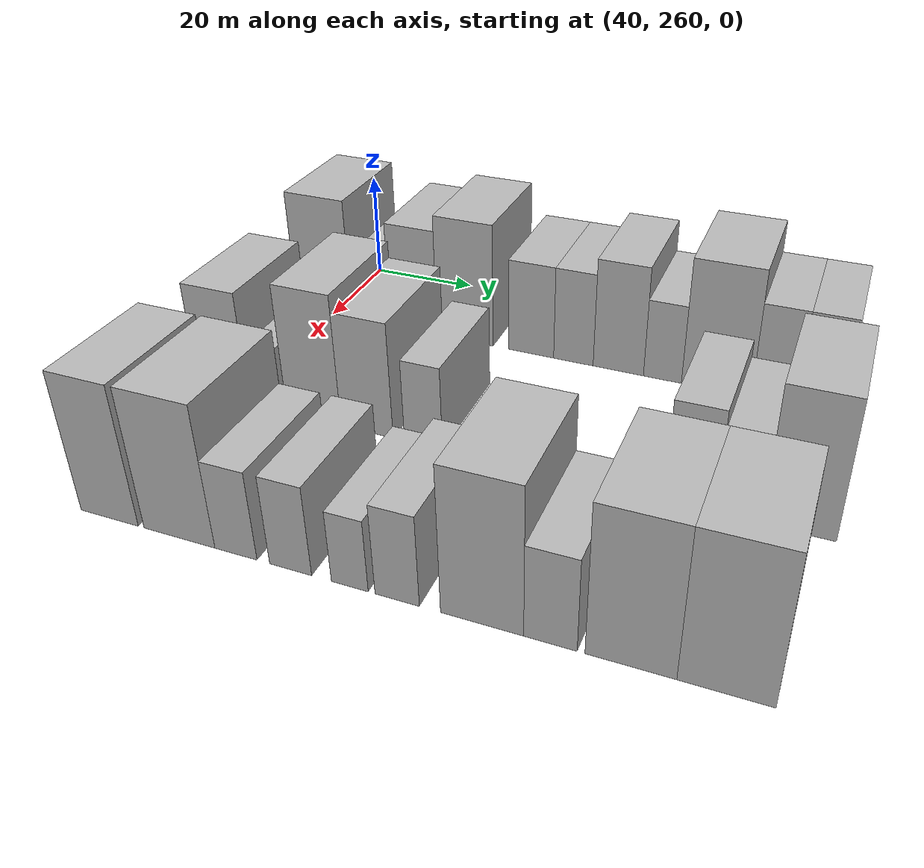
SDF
<sdf version="1.6">
 <world name="default">
  <model name="building_67">
   <static>1</static>
   <pose>50.0000 258.0825 0 0.000000 0.000000 0.000000</pose>
   <link name="link">
    <pose>0 0 12.00 0 0 0</pose>
    <collision name="collision"><geometry><box><size>20.0000 11.8950 24.0000</size></box></geometry></collision>
    <visual name="visual">
     <cast_shadows>0</cast_shadows>
     <geometry><box><size>20.0000 11.8950 24.0000</size></box></geometry>
     <material>
      <script>
       <uri>model://HANNAS_wall/materials/scripts</uri>
       <uri>model://HANNAS_wall/materials/textures</uri>
       <name>vrc/HANNAS_wall</name>
      </script>
     </material>
    </visual>
   </link>
  </model>
  <model name="building_68">
   <static>1</static>
   <pose>50.0000 269.0869 0 0.000000 0.000000 0.000000</pose>
   <link name="link">
    <pose>0 0 7.50 0 0 0</pose>
    <collision name="collision"><geometry><box><size>20.0000 6.1139 15.0000</size></box></geometry></collision>
    <visual name="visual">
     <cast_shadows>0</cast_shadows>
     <geometry><box><size>20.0000 6.1139 15.0000</size></box></geometry>
     <material>
      <script>
       <uri>model://HANNAS_wall/materials/scripts</uri>
       <uri>model://HANNAS_wall/materials/textures</uri>
       <name>vrc/HANNAS_wall</name>
      </script>
     </material>
    </visual>
   </link>
  </model>
  <model name="building_69">
   <static>1</static>
   <pose>50.0000 276.9377 0 0.000000 0.000000 0.000000</pose>
   <link name="link">
    <pose>0 0 10.50 0 0 0</pose>
    <collision name="collision"><geometry><box><size>20.0000 9.5877 21.0000</size></box></geometry></collision>
    <visual name="visual">
     <cast_shadows>0</cast_shadows>
     <geometry><box><size>20.0000 9.5877 21.0000</size></box></geometry>
     <material>
      <script>
       <uri>model://HANNAS_wall/materials/scripts</uri>
       <uri>model://HANNAS_wall/materials/textures</uri>
       <name>vrc/HANNAS_wall</name>
      </script>
     </material>
    </visual>
   </link>
  </model>
  <model name="building_70">
   <static>1</static>
   <pose>50.0000 287.3163 0 0.000000 0.000000 0.000000</pose>
   <link name="link">
    <pose>0 0 12.00 0 0 0</pose>
    <collision name="collision"><geometry><box><size>20.0000 11.1694 24.0000</size></box></geometry></collision>
    <visual name="visual">
     <cast_shadows>0</cast_shadows>
     <geometry><box><size>20.0000 11.1694 24.0000</size></box></geometry>
     <material>
      <script>
       <uri>model://HANNAS_wall/materials/scripts</uri>
       <uri>model://HANNAS_wall/materials/textures</uri>
       <name>vrc/HANNAS_wall</name>
      </script>
     </material>
    </visual>
   </link>
  </model>
  <model name="building_71">
   <static>1</static>
   <pose>50.0000 300.2091 0 0.000000 0.000000 0.000000</pose>
   <link name="link">
    <pose>0 0 9.00 0 0 0</pose>
    <collision name="collision"><geometry><box><size>20.0000 8.6162 18.0000</size></box></geometry></collision>
    <visual name="visual">
     <cast_shadows>0</cast_shadows>
     <geometry><box><size>20.0000 8.6162 18.0000</size></box></geometry>
     <material>
      <script>
       <uri>model://HANNAS_wall/materials/scripts</uri>
       <uri>model://HANNAS_wall/materials/textures</uri>
       <name>vrc/HANNAS_wall</name>
      </script>
     </material>
    </visual>
   </link>
  </model>
  <model name="building_72">
   <static>1</static>
   <pose>50.0000 308.1991 0 0.000000 0.000000 0.000000</pose>
   <link name="link">
    <pose>0 0 9.00 0 0 0</pose>
    <collision name="collision"><geometry><box><size>20.0000 7.3640 18.0000</size></box></geometry></collision>
    <visual name="visual">
     <cast_shadows>0</cast_shadows>
     <geometry><box><size>20.0000 7.3640 18.0000</size></box></geometry>
     <material>
      <script>
       <uri>model://HANNAS_wall/materials/scripts</uri>
       <uri>model://HANNAS_wall/materials/textures</uri>
       <name>vrc/HANNAS_wall</name>
      </script>
     </material>
    </visual>
   </link>
  </model>
  <model name="building_73">
   <static>1</static>
   <pose>50.0000 316.4513 0 0.000000 0.000000 0.000000</pose>
   <link name="link">
    <pose>0 0 10.50 0 0 0</pose>
    <collision name="collision"><geometry><box><size>20.0000 9.1403 21.0000</size></box></geometry></collision>
    <visual name="visual">
     <cast_shadows>0</cast_shadows>
     <geometry><box><size>20.0000 9.1403 21.0000</size></box></geometry>
     <material>
      <script>
       <uri>model://HANNAS_wall/materials/scripts</uri>
       <uri>model://HANNAS_wall/materials/textures</uri>
       <name>vrc/HANNAS_wall</name>
      </script>
     </material>
    </visual>
   </link>
  </model>
  <model name="building_74">
   <static>1</static>
   <pose>50.0000 324.3762 0 0.000000 0.000000 0.000000</pose>
   <link name="link">
    <pose>0 0 7.50 0 0 0</pose>
    <collision name="collision"><geometry><box><size>20.0000 6.7095 15.0000</size></box></geometry></collision>
    <visual name="visual">
     <cast_shadows>0</cast_shadows>
     <geometry><box><size>20.0000 6.7095 15.0000</size></box></geometry>
     <material>
      <script>
       <uri>model://HANNAS_wall/materials/scripts</uri>
       <uri>model://HANNAS_wall/materials/textures</uri>
       <name>vrc/HANNAS_wall</name>
      </script>
     </material>
    </visual>
   </link>
  </model>
  <model name="building_75">
   <static>1</static>
   <pose>50.0000 333.7004 0 0.000000 0.000000 0.000000</pose>
   <link name="link">
    <pose>0 0 12.00 0 0 0</pose>
    <collision name="collision"><geometry><box><size>20.0000 11.9389 24.0000</size></box></geometry></collision>
    <visual name="visual">
     <cast_shadows>0</cast_shadows>
     <geometry><box><size>20.0000 11.9389 24.0000</size></box></geometry>
     <material>
      <script>
       <uri>model://HANNAS_wall/materials/scripts</uri>
       <uri>model://HANNAS_wall/materials/textures</uri>
       <name>vrc/HANNAS_wall</name>
      </script>
     </material>
    </visual>
   </link>
  </model>
  <model name="building_76">
   <static>1</static>
   <pose>50.0000 343.4634 0 0.000000 0.000000 0.000000</pose>
   <link name="link">
    <pose>0 0 9.00 0 0 0</pose>
    <collision name="collision"><geometry><box><size>20.0000 7.5872 18.0000</size></box></geometry></collision>
    <visual name="visual">
     <cast_shadows>0</cast_shadows>
     <geometry><box><size>20.0000 7.5872 18.0000</size></box></geometry>
     <material>
      <script>
       <uri>model://HANNAS_wall/materials/scripts</uri>
       <uri>model://HANNAS_wall/materials/textures</uri>
       <name>vrc/HANNAS_wall</name>
      </script>
     </material>
    </visual>
   </link>
  </model>
  <model name="building_77">
   <static>1</static>
   <pose>50.0000 351.0186 0 0.000000 0.000000 0.000000</pose>
   <link name="link">
    <pose>0 0 9.00 0 0 0</pose>
    <collision name="collision"><geometry><box><size>20.0000 7.5232 18.0000</size></box></geometry></collision>
    <visual name="visual">
     <cast_shadows>0</cast_shadows>
     <geometry><box><size>20.0000 7.5232 18.0000</size></box></geometry>
     <material>
      <script>
       <uri>model://HANNAS_wall/materials/scripts</uri>
       <uri>model://HANNAS_wall/materials/textures</uri>
       <name>vrc/HANNAS_wall</name>
      </script>
     </material>
    </visual>
   </link>
  </model>
  <model name="building_141">
   <static>1</static>
   <pose>82.0000 256.9384 0 0.000000 0.000000 0.000000</pose>
   <link name="link">
    <pose>0 0 10.50 0 0 0</pose>
    <collision name="collision"><geometry><box><size>20.0000 9.8046 21.0000</size></box></geometry></collision>
    <visual name="visual">
     <cast_shadows>0</cast_shadows>
     <geometry><box><size>20.0000 9.8046 21.0000</size></box></geometry>
     <material>
      <script>
       <uri>model://HANNAS_wall/materials/scripts</uri>
       <uri>model://HANNAS_wall/materials/textures</uri>
       <name>vrc/HANNAS_wall</name>
      </script>
     </material>
    </visual>
   </link>
  </model>
  <model name="building_142">
   <static>1</static>
   <pose>82.0000 265.4273 0 0.000000 0.000000 0.000000</pose>
   <link name="link">
    <pose>0 0 6.00 0 0 0</pose>
    <collision name="collision"><geometry><box><size>20.0000 5.1731 12.0000</size></box></geometry></collision>
    <visual name="visual">
     <cast_shadows>0</cast_shadows>
     <geometry><box><size>20.0000 5.1731 12.0000</size></box></geometry>
     <material>
      <script>
       <uri>model://HANNAS_wall/materials/scripts</uri>
       <uri>model://HANNAS_wall/materials/textures</uri>
       <name>vrc/HANNAS_wall</name>
      </script>
     </material>
    </visual>
   </link>
  </model>
  <model name="building_143">
   <static>1</static>
   <pose>82.0000 274.0516 0 0.000000 0.000000 0.000000</pose>
   <link name="link">
    <pose>0 0 12.00 0 0 0</pose>
    <collision name="collision"><geometry><box><size>20.0000 10.0757 24.0000</size></box></geometry></collision>
    <visual name="visual">
     <cast_shadows>0</cast_shadows>
     <geometry><box><size>20.0000 10.0757 24.0000</size></box></geometry>
     <material>
      <script>
       <uri>model://HANNAS_wall/materials/scripts</uri>
       <uri>model://HANNAS_wall/materials/textures</uri>
       <name>vrc/HANNAS_wall</name>
      </script>
     </material>
    </visual>
   </link>
  </model>
  <model name="building_144">
   <static>1</static>
   <pose>82.0000 283.7586 0 0.000000 0.000000 0.000000</pose>
   <link name="link">
    <pose>0 0 10.50 0 0 0</pose>
    <collision name="collision"><geometry><box><size>20.0000 9.3383 21.0000</size></box></geometry></collision>
    <visual name="visual">
     <cast_shadows>0</cast_shadows>
     <geometry><box><size>20.0000 9.3383 21.0000</size></box></geometry>
     <material>
      <script>
       <uri>model://HANNAS_wall/materials/scripts</uri>
       <uri>model://HANNAS_wall/materials/textures</uri>
       <name>vrc/HANNAS_wall</name>
      </script>
     </material>
    </visual>
   </link>
  </model>
  <model name="building_145">
   <static>1</static>
   <pose>82.0000 293.7158 0 0.000000 0.000000 0.000000</pose>
   <link name="link">
    <pose>0 0 7.50 0 0 0</pose>
    <collision name="collision"><geometry><box><size>20.0000 6.5761 15.0000</size></box></geometry></collision>
    <visual name="visual">
     <cast_shadows>0</cast_shadows>
     <geometry><box><size>20.0000 6.5761 15.0000</size></box></geometry>
     <material>
      <script>
       <uri>model://HANNAS_wall/materials/scripts</uri>
       <uri>model://HANNAS_wall/materials/textures</uri>
       <name>vrc/HANNAS_wall</name>
      </script>
     </material>
    </visual>
   </link>
  </model>
  <model name="building_146">
   <static>1</static>
   <pose>82.0000 336.3327 0 0.000000 0.000000 0.000000</pose>
   <link name="link">
    <pose>0 0 9.00 0 0 0</pose>
    <collision name="collision"><geometry><box><size>20.0000 7.5526 18.0000</size></box></geometry></collision>
    <visual name="visual">
     <cast_shadows>0</cast_shadows>
     <geometry><box><size>20.0000 7.5526 18.0000</size></box></geometry>
     <material>
      <script>
       <uri>model://HANNAS_wall/materials/scripts</uri>
       <uri>model://HANNAS_wall/materials/textures</uri>
       <name>vrc/HANNAS_wall</name>
      </script>
     </material>
    </visual>
   </link>
  </model>
  <model name="building_147">
   <static>1</static>
   <pose>82.0000 343.4468 0 0.000000 0.000000 0.000000</pose>
   <link name="link">
    <pose>0 0 7.50 0 0 0</pose>
    <collision name="collision"><geometry><box><size>20.0000 6.6756 15.0000</size></box></geometry></collision>
    <visual name="visual">
     <cast_shadows>0</cast_shadows>
     <geometry><box><size>20.0000 6.6756 15.0000</size></box></geometry>
     <material>
      <script>
       <uri>model://HANNAS_wall/materials/scripts</uri>
       <uri>model://HANNAS_wall/materials/textures</uri>
       <name>vrc/HANNAS_wall</name>
      </script>
     </material>
    </visual>
   </link>
  </model>
  <model name="building_148">
   <static>1</static>
   <pose>82.0000 351.9427 0 0.000000 0.000000 0.000000</pose>
   <link name="link">
    <pose>0 0 12.00 0 0 0</pose>
    <collision name="collision"><geometry><box><size>20.0000 10.3162 24.0000</size></box></geometry></collision>
    <visual name="visual">
     <cast_shadows>0</cast_shadows>
     <geometry><box><size>20.0000 10.3162 24.0000</size></box></geometry>
     <material>
      <script>
       <uri>model://HANNAS_wall/materials/scripts</uri>
       <uri>model://HANNAS_wall/materials/textures</uri>
       <name>vrc/HANNAS_wall</name>
      </script>
     </material>
    </visual>
   </link>
  </model>
  <model name="building_216">
   <static>1</static>
   <pose>114.0000 258.9433 0 0.000000 0.000000 0.000000</pose>
   <link name="link">
    <pose>0 0 12.00 0 0 0</pose>
    <collision name="collision"><geometry><box><size>20.0000 9.9906 24.0000</size></box></geometry></collision>
    <visual name="visual">
     <cast_shadows>0</cast_shadows>
     <geometry><box><size>20.0000 9.9906 24.0000</size></box></geometry>
     <material>
      <script>
       <uri>model://HANNAS_wall/materials/scripts</uri>
       <uri>model://HANNAS_wall/materials/textures</uri>
       <name>vrc/HANNAS_wall</name>
      </script>
     </material>
    </visual>
   </link>
  </model>
  <model name="building_217">
   <static>1</static>
   <pose>114.0000 270.8467 0 0.000000 0.000000 0.000000</pose>
   <link name="link">
    <pose>0 0 12.00 0 0 0</pose>
    <collision name="collision"><geometry><box><size>20.0000 11.8162 24.0000</size></box></geometry></collision>
    <visual name="visual">
     <cast_shadows>0</cast_shadows>
     <geometry><box><size>20.0000 11.8162 24.0000</size></box></geometry>
     <material>
      <script>
       <uri>model://HANNAS_wall/materials/scripts</uri>
       <uri>model://HANNAS_wall/materials/textures</uri>
       <name>vrc/HANNAS_wall</name>
      </script>
     </material>
    </visual>
   </link>
  </model>
  <model name="building_218">
   <static>1</static>
   <pose>114.0000 280.1374 0 0.000000 0.000000 0.000000</pose>
   <link name="link">
    <pose>0 0 7.50 0 0 0</pose>
    <collision name="collision"><geometry><box><size>20.0000 6.7651 15.0000</size></box></geometry></collision>
    <visual name="visual">
     <cast_shadows>0</cast_shadows>
     <geometry><box><size>20.0000 6.7651 15.0000</size></box></geometry>
     <material>
      <script>
       <uri>model://HANNAS_wall/materials/scripts</uri>
       <uri>model://HANNAS_wall/materials/textures</uri>
       <name>vrc/HANNAS_wall</name>
      </script>
     </material>
    </visual>
   </link>
  </model>
  <model name="building_219">
   <static>1</static>
   <pose>114.0000 288.7727 0 0.000000 0.000000 0.000000</pose>
   <link name="link">
    <pose>0 0 7.50 0 0 0</pose>
    <collision name="collision"><geometry><box><size>20.0000 6.5054 15.0000</size></box></geometry></collision>
    <visual name="visual">
     <cast_shadows>0</cast_shadows>
     <geometry><box><size>20.0000 6.5054 15.0000</size></box></geometry>
     <material>
      <script>
       <uri>model://HANNAS_wall/materials/scripts</uri>
       <uri>model://HANNAS_wall/materials/textures</uri>
       <name>vrc/HANNAS_wall</name>
      </script>
     </material>
    </visual>
   </link>
  </model>
  <model name="building_220">
   <static>1</static>
   <pose>114.0000 297.7680 0 0.000000 0.000000 0.000000</pose>
   <link name="link">
    <pose>0 0 6.00 0 0 0</pose>
    <collision name="collision"><geometry><box><size>20.0000 5.4853 12.0000</size></box></geometry></collision>
    <visual name="visual">
     <cast_shadows>0</cast_shadows>
     <geometry><box><size>20.0000 5.4853 12.0000</size></box></geometry>
     <material>
      <script>
       <uri>model://HANNAS_wall/materials/scripts</uri>
       <uri>model://HANNAS_wall/materials/textures</uri>
       <name>vrc/HANNAS_wall</name>
      </script>
     </material>
    </visual>
   </link>
  </model>
  <model name="building_221">
   <static>1</static>
   <pose>114.0000 304.7174 0 0.000000 0.000000 0.000000</pose>
   <link name="link">
    <pose>0 0 7.50 0 0 0</pose>
    <collision name="collision"><geometry><box><size>20.0000 6.4134 15.0000</size></box></geometry></collision>
    <visual name="visual">
     <cast_shadows>0</cast_shadows>
     <geometry><box><size>20.0000 6.4134 15.0000</size></box></geometry>
     <material>
      <script>
       <uri>model://HANNAS_wall/materials/scripts</uri>
       <uri>model://HANNAS_wall/materials/textures</uri>
       <name>vrc/HANNAS_wall</name>
      </script>
     </material>
    </visual>
   </link>
  </model>
  <model name="building_222">
   <static>1</static>
   <pose>114.0000 316.6228 0 0.000000 0.000000 0.000000</pose>
   <link name="link">
    <pose>0 0 12.00 0 0 0</pose>
    <collision name="collision"><geometry><box><size>20.0000 11.3973 24.0000</size></box></geometry></collision>
    <visual name="visual">
     <cast_shadows>0</cast_shadows>
     <geometry><box><size>20.0000 11.3973 24.0000</size></box></geometry>
     <material>
      <script>
       <uri>model://HANNAS_wall/materials/scripts</uri>
       <uri>model://HANNAS_wall/materials/textures</uri>
       <name>vrc/HANNAS_wall</name>
      </script>
     </material>
    </visual>
   </link>
  </model>
  <model name="building_223">
   <static>1</static>
   <pose>114.0000 325.8411 0 0.000000 0.000000 0.000000</pose>
   <link name="link">
    <pose>0 0 7.50 0 0 0</pose>
    <collision name="collision"><geometry><box><size>20.0000 7.0393 15.0000</size></box></geometry></collision>
    <visual name="visual">
     <cast_shadows>0</cast_shadows>
     <geometry><box><size>20.0000 7.0393 15.0000</size></box></geometry>
     <material>
      <script>
       <uri>model://HANNAS_wall/materials/scripts</uri>
       <uri>model://HANNAS_wall/materials/textures</uri>
       <name>vrc/HANNAS_wall</name>
      </script>
     </material>
    </visual>
   </link>
  </model>
  <model name="building_224">
   <static>1</static>
   <pose>114.0000 336.1165 0 0.000000 0.000000 0.000000</pose>
   <link name="link">
    <pose>0 0 12.00 0 0 0</pose>
    <collision name="collision"><geometry><box><size>20.0000 11.5115 24.0000</size></box></geometry></collision>
    <visual name="visual">
     <cast_shadows>0</cast_shadows>
     <geometry><box><size>20.0000 11.5115 24.0000</size></box></geometry>
     <material>
      <script>
       <uri>model://HANNAS_wall/materials/scripts</uri>
       <uri>model://HANNAS_wall/materials/textures</uri>
       <name>vrc/HANNAS_wall</name>
      </script>
     </material>
    </visual>
   </link>
  </model>
  <model name="building_225">
   <static>1</static>
   <pose>114.0000 347.7622 0 0.000000 0.000000 0.000000</pose>
   <link name="link">
    <pose>0 0 12.00 0 0 0</pose>
    <collision name="collision"><geometry><box><size>20.0000 11.7799 24.0000</size></box></geometry></collision>
    <visual name="visual">
     <cast_shadows>0</cast_shadows>
     <geometry><box><size>20.0000 11.7799 24.0000</size></box></geometry>
     <material>
      <script>
       <uri>model://HANNAS_wall/materials/scripts</uri>
       <uri>model://HANNAS_wall/materials/textures</uri>
       <name>vrc/HANNAS_wall</name>
      </script>
     </material>
    </visual>
   </link>
  </model>
 </world>
</sdf>
